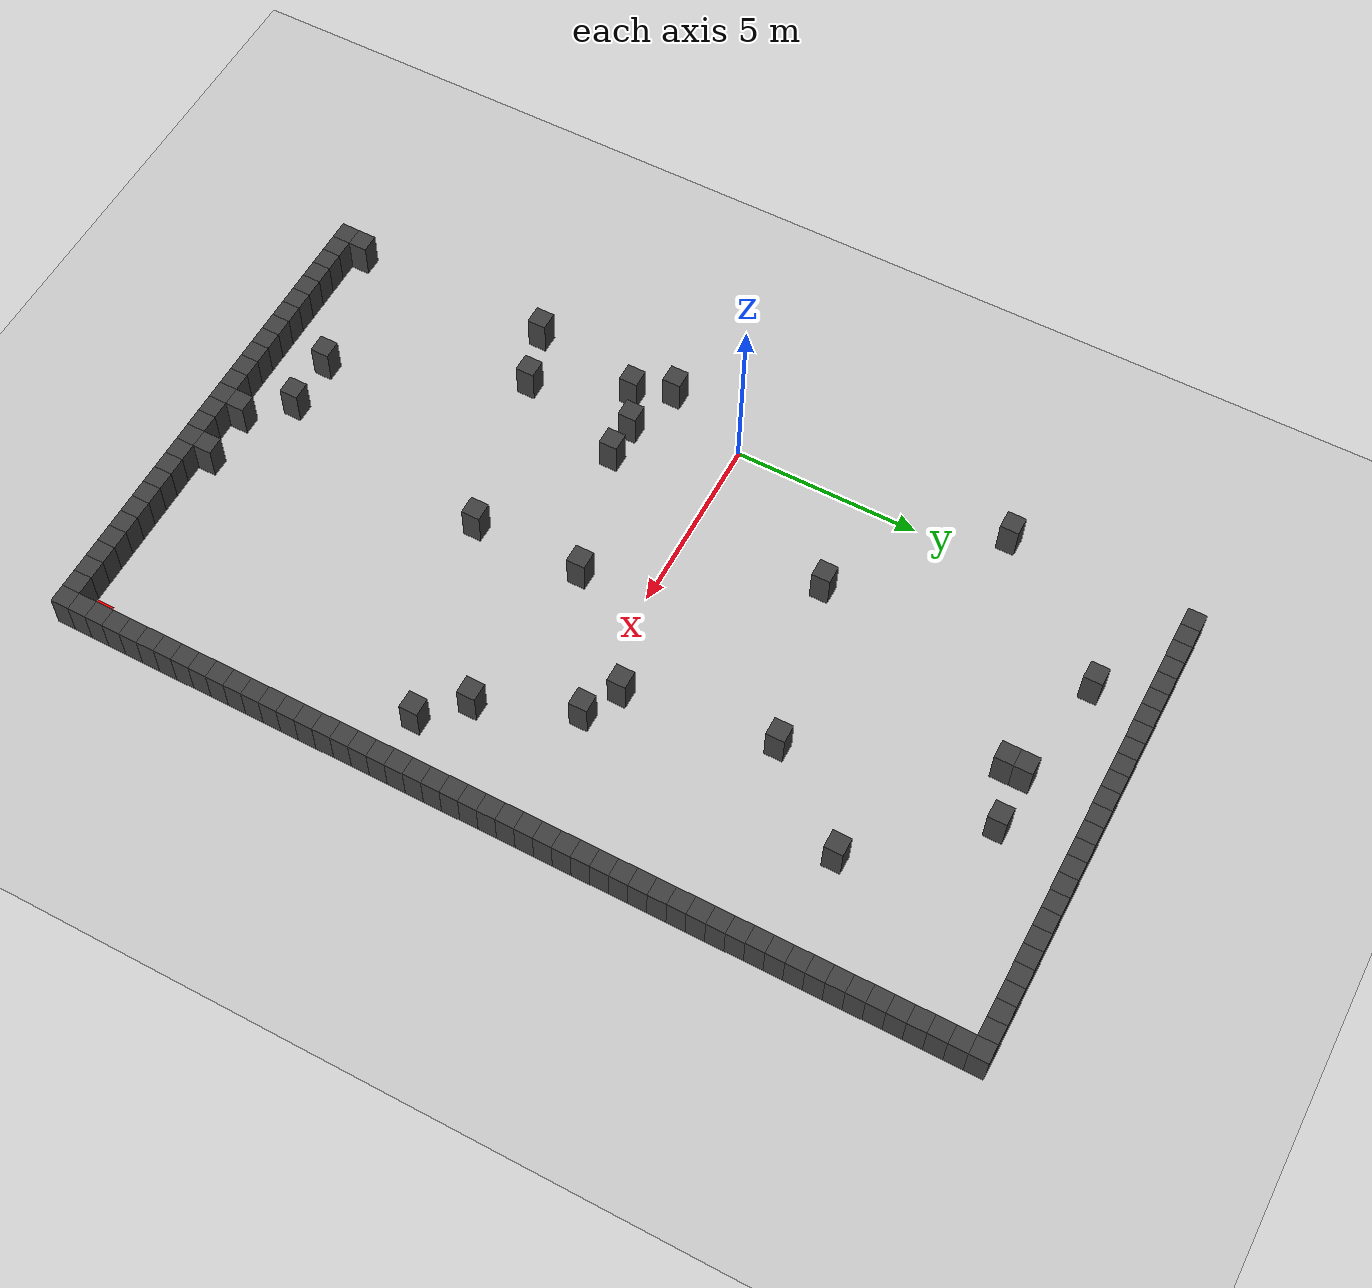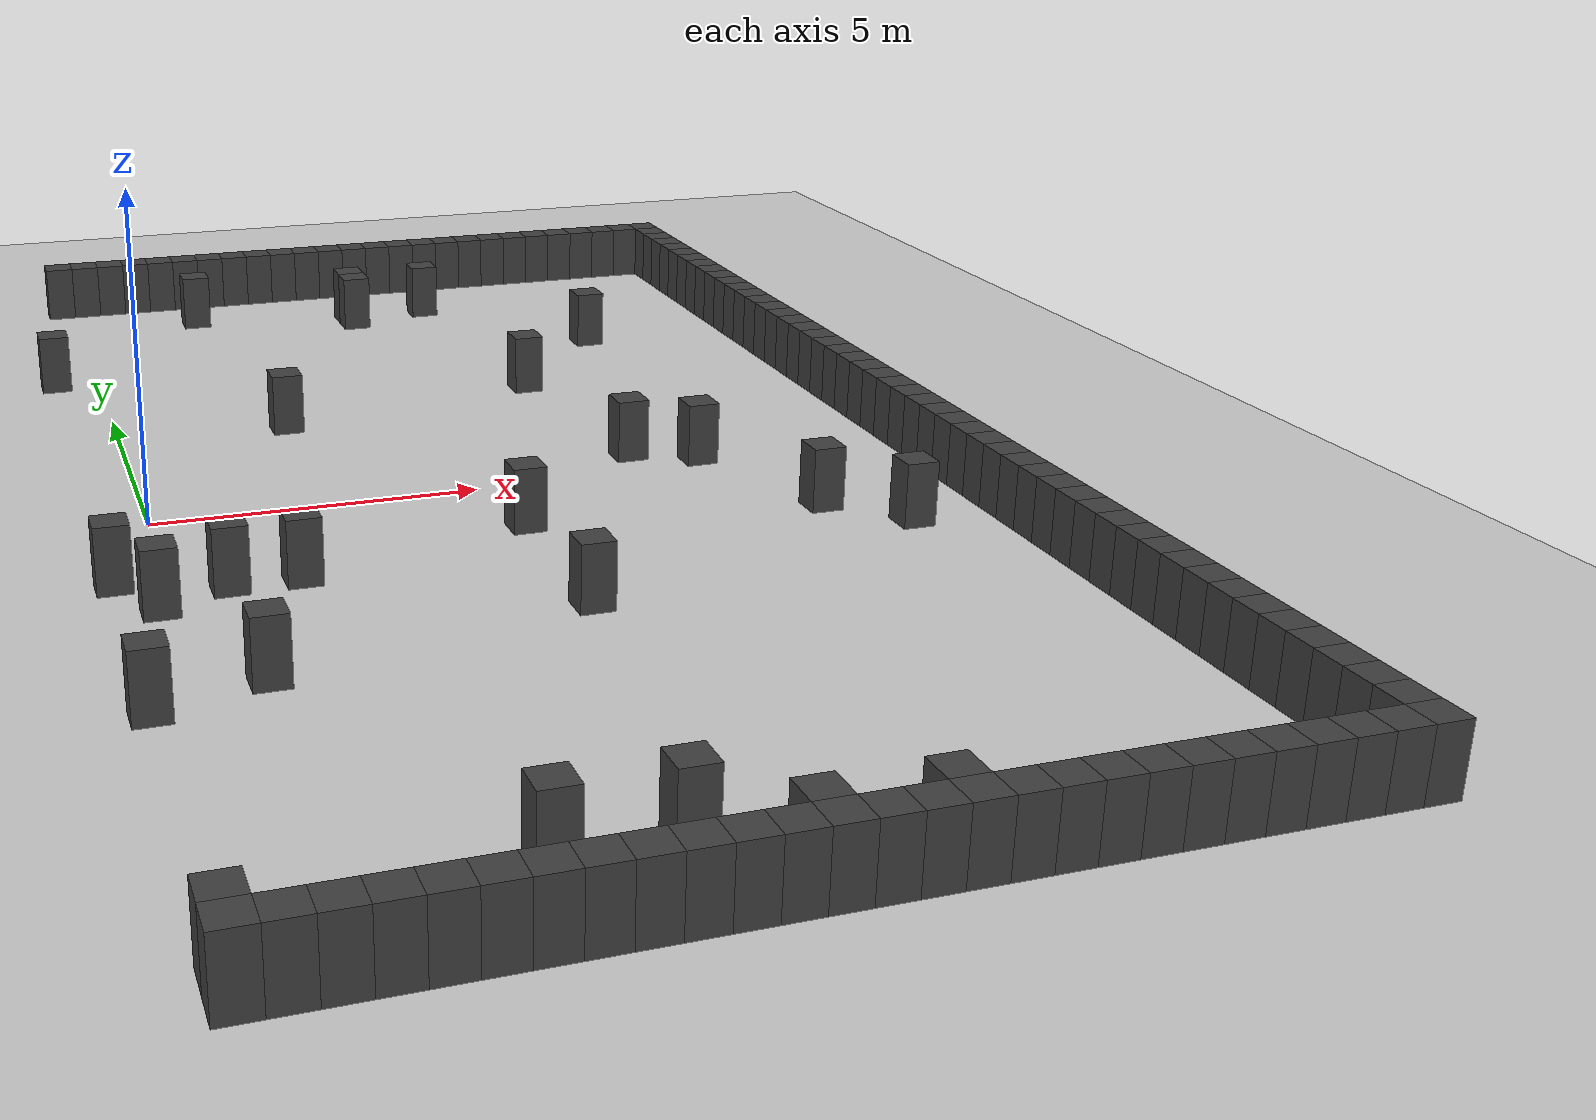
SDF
<sdf version="1.7">
 <world name="map_61">
  <model name="ground_plane">
   <static>true</static>
   <link name="link">
    <collision name="collision">
     <geometry><plane><normal>0 0 1</normal><size>200 200</size></plane></geometry>
    </collision>
    <visual name="visual">
     <geometry><plane><normal>0 0 1</normal><size>200 200</size></plane></geometry>
     <material><ambient>0.8 0.8 0.8 1</ambient><diffuse>0.8 0.8 0.8 1</diffuse></material>
    </visual>
   </link>
  </model>
  <model name="maze_environment">
   <static>true</static>
   <link name="wall_24">
    <pose>-0.250 12.250 0.500 0 0 0</pose>
    <collision name="col"><geometry><box><size>0.5 0.5 1.0</size></box></geometry></collision>
    <visual name="vis">
     <geometry><box><size>0.5 0.5 1.0</size></box></geometry>
     <material><ambient>0.15 0.15 0.15 1</ambient><diffuse>0.25 0.25 0.25 1</diffuse></material>
    </visual>
   </link>
   <link name="wall_25">
    <pose>0.250 12.250 0.500 0 0 0</pose>
    <collision name="col"><geometry><box><size>0.5 0.5 1.0</size></box></geometry></collision>
    <visual name="vis">
     <geometry><box><size>0.5 0.5 1.0</size></box></geometry>
     <material><ambient>0.15 0.15 0.15 1</ambient><diffuse>0.25 0.25 0.25 1</diffuse></material>
    </visual>
   </link>
   <link name="wall_26">
    <pose>0.750 12.250 0.500 0 0 0</pose>
    <collision name="col"><geometry><box><size>0.5 0.5 1.0</size></box></geometry></collision>
    <visual name="vis">
     <geometry><box><size>0.5 0.5 1.0</size></box></geometry>
     <material><ambient>0.15 0.15 0.15 1</ambient><diffuse>0.25 0.25 0.25 1</diffuse></material>
    </visual>
   </link>
   <link name="wall_27">
    <pose>1.250 12.250 0.500 0 0 0</pose>
    <collision name="col"><geometry><box><size>0.5 0.5 1.0</size></box></geometry></collision>
    <visual name="vis">
     <geometry><box><size>0.5 0.5 1.0</size></box></geometry>
     <material><ambient>0.15 0.15 0.15 1</ambient><diffuse>0.25 0.25 0.25 1</diffuse></material>
    </visual>
   </link>
   <link name="wall_28">
    <pose>1.750 12.250 0.500 0 0 0</pose>
    <collision name="col"><geometry><box><size>0.5 0.5 1.0</size></box></geometry></collision>
    <visual name="vis">
     <geometry><box><size>0.5 0.5 1.0</size></box></geometry>
     <material><ambient>0.15 0.15 0.15 1</ambient><diffuse>0.25 0.25 0.25 1</diffuse></material>
    </visual>
   </link>
   <link name="wall_29">
    <pose>2.250 12.250 0.500 0 0 0</pose>
    <collision name="col"><geometry><box><size>0.5 0.5 1.0</size></box></geometry></collision>
    <visual name="vis">
     <geometry><box><size>0.5 0.5 1.0</size></box></geometry>
     <material><ambient>0.15 0.15 0.15 1</ambient><diffuse>0.25 0.25 0.25 1</diffuse></material>
    </visual>
   </link>
   <link name="wall_30">
    <pose>2.750 12.250 0.500 0 0 0</pose>
    <collision name="col"><geometry><box><size>0.5 0.5 1.0</size></box></geometry></collision>
    <visual name="vis">
     <geometry><box><size>0.5 0.5 1.0</size></box></geometry>
     <material><ambient>0.15 0.15 0.15 1</ambient><diffuse>0.25 0.25 0.25 1</diffuse></material>
    </visual>
   </link>
   <link name="wall_31">
    <pose>3.250 12.250 0.500 0 0 0</pose>
    <collision name="col"><geometry><box><size>0.5 0.5 1.0</size></box></geometry></collision>
    <visual name="vis">
     <geometry><box><size>0.5 0.5 1.0</size></box></geometry>
     <material><ambient>0.15 0.15 0.15 1</ambient><diffuse>0.25 0.25 0.25 1</diffuse></material>
    </visual>
   </link>
   <link name="wall_32">
    <pose>3.750 12.250 0.500 0 0 0</pose>
    <collision name="col"><geometry><box><size>0.5 0.5 1.0</size></box></geometry></collision>
    <visual name="vis">
     <geometry><box><size>0.5 0.5 1.0</size></box></geometry>
     <material><ambient>0.15 0.15 0.15 1</ambient><diffuse>0.25 0.25 0.25 1</diffuse></material>
    </visual>
   </link>
   <link name="wall_33">
    <pose>4.250 12.250 0.500 0 0 0</pose>
    <collision name="col"><geometry><box><size>0.5 0.5 1.0</size></box></geometry></collision>
    <visual name="vis">
     <geometry><box><size>0.5 0.5 1.0</size></box></geometry>
     <material><ambient>0.15 0.15 0.15 1</ambient><diffuse>0.25 0.25 0.25 1</diffuse></material>
    </visual>
   </link>
   <link name="wall_34">
    <pose>4.750 12.250 0.500 0 0 0</pose>
    <collision name="col"><geometry><box><size>0.5 0.5 1.0</size></box></geometry></collision>
    <visual name="vis">
     <geometry><box><size>0.5 0.5 1.0</size></box></geometry>
     <material><ambient>0.15 0.15 0.15 1</ambient><diffuse>0.25 0.25 0.25 1</diffuse></material>
    </visual>
   </link>
   <link name="wall_35">
    <pose>5.250 12.250 0.500 0 0 0</pose>
    <collision name="col"><geometry><box><size>0.5 0.5 1.0</size></box></geometry></collision>
    <visual name="vis">
     <geometry><box><size>0.5 0.5 1.0</size></box></geometry>
     <material><ambient>0.15 0.15 0.15 1</ambient><diffuse>0.25 0.25 0.25 1</diffuse></material>
    </visual>
   </link>
   <link name="wall_36">
    <pose>5.750 12.250 0.500 0 0 0</pose>
    <collision name="col"><geometry><box><size>0.5 0.5 1.0</size></box></geometry></collision>
    <visual name="vis">
     <geometry><box><size>0.5 0.5 1.0</size></box></geometry>
     <material><ambient>0.15 0.15 0.15 1</ambient><diffuse>0.25 0.25 0.25 1</diffuse></material>
    </visual>
   </link>
   <link name="wall_37">
    <pose>6.250 12.250 0.500 0 0 0</pose>
    <collision name="col"><geometry><box><size>0.5 0.5 1.0</size></box></geometry></collision>
    <visual name="vis">
     <geometry><box><size>0.5 0.5 1.0</size></box></geometry>
     <material><ambient>0.15 0.15 0.15 1</ambient><diffuse>0.25 0.25 0.25 1</diffuse></material>
    </visual>
   </link>
   <link name="wall_38">
    <pose>6.750 12.250 0.500 0 0 0</pose>
    <collision name="col"><geometry><box><size>0.5 0.5 1.0</size></box></geometry></collision>
    <visual name="vis">
     <geometry><box><size>0.5 0.5 1.0</size></box></geometry>
     <material><ambient>0.15 0.15 0.15 1</ambient><diffuse>0.25 0.25 0.25 1</diffuse></material>
    </visual>
   </link>
   <link name="wall_39">
    <pose>7.250 12.250 0.500 0 0 0</pose>
    <collision name="col"><geometry><box><size>0.5 0.5 1.0</size></box></geometry></collision>
    <visual name="vis">
     <geometry><box><size>0.5 0.5 1.0</size></box></geometry>
     <material><ambient>0.15 0.15 0.15 1</ambient><diffuse>0.25 0.25 0.25 1</diffuse></material>
    </visual>
   </link>
   <link name="wall_40">
    <pose>7.750 12.250 0.500 0 0 0</pose>
    <collision name="col"><geometry><box><size>0.5 0.5 1.0</size></box></geometry></collision>
    <visual name="vis">
     <geometry><box><size>0.5 0.5 1.0</size></box></geometry>
     <material><ambient>0.15 0.15 0.15 1</ambient><diffuse>0.25 0.25 0.25 1</diffuse></material>
    </visual>
   </link>
   <link name="wall_41">
    <pose>8.250 12.250 0.500 0 0 0</pose>
    <collision name="col"><geometry><box><size>0.5 0.5 1.0</size></box></geometry></collision>
    <visual name="vis">
     <geometry><box><size>0.5 0.5 1.0</size></box></geometry>
     <material><ambient>0.15 0.15 0.15 1</ambient><diffuse>0.25 0.25 0.25 1</diffuse></material>
    </visual>
   </link>
   <link name="wall_42">
    <pose>8.750 12.250 0.500 0 0 0</pose>
    <collision name="col"><geometry><box><size>0.5 0.5 1.0</size></box></geometry></collision>
    <visual name="vis">
     <geometry><box><size>0.5 0.5 1.0</size></box></geometry>
     <material><ambient>0.15 0.15 0.15 1</ambient><diffuse>0.25 0.25 0.25 1</diffuse></material>
    </visual>
   </link>
   <link name="wall_43">
    <pose>9.250 12.250 0.500 0 0 0</pose>
    <collision name="col"><geometry><box><size>0.5 0.5 1.0</size></box></geometry></collision>
    <visual name="vis">
     <geometry><box><size>0.5 0.5 1.0</size></box></geometry>
     <material><ambient>0.15 0.15 0.15 1</ambient><diffuse>0.25 0.25 0.25 1</diffuse></material>
    </visual>
   </link>
   <link name="wall_44">
    <pose>9.750 12.250 0.500 0 0 0</pose>
    <collision name="col"><geometry><box><size>0.5 0.5 1.0</size></box></geometry></collision>
    <visual name="vis">
     <geometry><box><size>0.5 0.5 1.0</size></box></geometry>
     <material><ambient>0.15 0.15 0.15 1</ambient><diffuse>0.25 0.25 0.25 1</diffuse></material>
    </visual>
   </link>
   <link name="wall_45">
    <pose>10.250 12.250 0.500 0 0 0</pose>
    <collision name="col"><geometry><box><size>0.5 0.5 1.0</size></box></geometry></collision>
    <visual name="vis">
     <geometry><box><size>0.5 0.5 1.0</size></box></geometry>
     <material><ambient>0.15 0.15 0.15 1</ambient><diffuse>0.25 0.25 0.25 1</diffuse></material>
    </visual>
   </link>
   <link name="wall_46">
    <pose>10.750 12.250 0.500 0 0 0</pose>
    <collision name="col"><geometry><box><size>0.5 0.5 1.0</size></box></geometry></collision>
    <visual name="vis">
     <geometry><box><size>0.5 0.5 1.0</size></box></geometry>
     <material><ambient>0.15 0.15 0.15 1</ambient><diffuse>0.25 0.25 0.25 1</diffuse></material>
    </visual>
   </link>
   <link name="wall_47">
    <pose>11.250 12.250 0.500 0 0 0</pose>
    <collision name="col"><geometry><box><size>0.5 0.5 1.0</size></box></geometry></collision>
    <visual name="vis">
     <geometry><box><size>0.5 0.5 1.0</size></box></geometry>
     <material><ambient>0.15 0.15 0.15 1</ambient><diffuse>0.25 0.25 0.25 1</diffuse></material>
    </visual>
   </link>
   <link name="wall_48">
    <pose>11.750 12.250 0.500 0 0 0</pose>
    <collision name="col"><geometry><box><size>0.5 0.5 1.0</size></box></geometry></collision>
    <visual name="vis">
     <geometry><box><size>0.5 0.5 1.0</size></box></geometry>
     <material><ambient>0.15 0.15 0.15 1</ambient><diffuse>0.25 0.25 0.25 1</diffuse></material>
    </visual>
   </link>
   <link name="wall_49">
    <pose>12.250 12.250 0.500 0 0 0</pose>
    <collision name="col"><geometry><box><size>0.5 0.5 1.0</size></box></geometry></collision>
    <visual name="vis">
     <geometry><box><size>0.5 0.5 1.0</size></box></geometry>
     <material><ambient>0.15 0.15 0.15 1</ambient><diffuse>0.25 0.25 0.25 1</diffuse></material>
    </visual>
   </link>
   <link name="wall_52">
    <pose>12.250 11.750 0.500 0 0 0</pose>
    <collision name="col"><geometry><box><size>0.5 0.5 1.0</size></box></geometry></collision>
    <visual name="vis">
     <geometry><box><size>0.5 0.5 1.0</size></box></geometry>
     <material><ambient>0.15 0.15 0.15 1</ambient><diffuse>0.25 0.25 0.25 1</diffuse></material>
    </visual>
   </link>
   <link name="wall_57">
    <pose>12.250 11.250 0.500 0 0 0</pose>
    <collision name="col"><geometry><box><size>0.5 0.5 1.0</size></box></geometry></collision>
    <visual name="vis">
     <geometry><box><size>0.5 0.5 1.0</size></box></geometry>
     <material><ambient>0.15 0.15 0.15 1</ambient><diffuse>0.25 0.25 0.25 1</diffuse></material>
    </visual>
   </link>
   <link name="wall_59">
    <pose>2.250 10.750 0.500 0 0 0</pose>
    <collision name="col"><geometry><box><size>0.5 0.5 1.0</size></box></geometry></collision>
    <visual name="vis">
     <geometry><box><size>0.5 0.5 1.0</size></box></geometry>
     <material><ambient>0.15 0.15 0.15 1</ambient><diffuse>0.25 0.25 0.25 1</diffuse></material>
    </visual>
   </link>
   <link name="wall_60">
    <pose>12.250 10.750 0.500 0 0 0</pose>
    <collision name="col"><geometry><box><size>0.5 0.5 1.0</size></box></geometry></collision>
    <visual name="vis">
     <geometry><box><size>0.5 0.5 1.0</size></box></geometry>
     <material><ambient>0.15 0.15 0.15 1</ambient><diffuse>0.25 0.25 0.25 1</diffuse></material>
    </visual>
   </link>
   <link name="wall_62">
    <pose>5.250 10.250 0.500 0 0 0</pose>
    <collision name="col"><geometry><box><size>0.5 0.5 1.0</size></box></geometry></collision>
    <visual name="vis">
     <geometry><box><size>0.5 0.5 1.0</size></box></geometry>
     <material><ambient>0.15 0.15 0.15 1</ambient><diffuse>0.25 0.25 0.25 1</diffuse></material>
    </visual>
   </link>
   <link name="wall_63">
    <pose>6.750 10.250 0.500 0 0 0</pose>
    <collision name="col"><geometry><box><size>0.5 0.5 1.0</size></box></geometry></collision>
    <visual name="vis">
     <geometry><box><size>0.5 0.5 1.0</size></box></geometry>
     <material><ambient>0.15 0.15 0.15 1</ambient><diffuse>0.25 0.25 0.25 1</diffuse></material>
    </visual>
   </link>
   <link name="wall_64">
    <pose>12.250 10.250 0.500 0 0 0</pose>
    <collision name="col"><geometry><box><size>0.5 0.5 1.0</size></box></geometry></collision>
    <visual name="vis">
     <geometry><box><size>0.5 0.5 1.0</size></box></geometry>
     <material><ambient>0.15 0.15 0.15 1</ambient><diffuse>0.25 0.25 0.25 1</diffuse></material>
    </visual>
   </link>
   <link name="wall_66">
    <pose>5.250 9.750 0.500 0 0 0</pose>
    <collision name="col"><geometry><box><size>0.5 0.5 1.0</size></box></geometry></collision>
    <visual name="vis">
     <geometry><box><size>0.5 0.5 1.0</size></box></geometry>
     <material><ambient>0.15 0.15 0.15 1</ambient><diffuse>0.25 0.25 0.25 1</diffuse></material>
    </visual>
   </link>
   <link name="wall_67">
    <pose>12.250 9.750 0.500 0 0 0</pose>
    <collision name="col"><geometry><box><size>0.5 0.5 1.0</size></box></geometry></collision>
    <visual name="vis">
     <geometry><box><size>0.5 0.5 1.0</size></box></geometry>
     <material><ambient>0.15 0.15 0.15 1</ambient><diffuse>0.25 0.25 0.25 1</diffuse></material>
    </visual>
   </link>
   <link name="wall_70">
    <pose>12.250 9.250 0.500 0 0 0</pose>
    <collision name="col"><geometry><box><size>0.5 0.5 1.0</size></box></geometry></collision>
    <visual name="vis">
     <geometry><box><size>0.5 0.5 1.0</size></box></geometry>
     <material><ambient>0.15 0.15 0.15 1</ambient><diffuse>0.25 0.25 0.25 1</diffuse></material>
    </visual>
   </link>
   <link name="wall_72">
    <pose>12.250 8.750 0.500 0 0 0</pose>
    <collision name="col"><geometry><box><size>0.5 0.5 1.0</size></box></geometry></collision>
    <visual name="vis">
     <geometry><box><size>0.5 0.5 1.0</size></box></geometry>
     <material><ambient>0.15 0.15 0.15 1</ambient><diffuse>0.25 0.25 0.25 1</diffuse></material>
    </visual>
   </link>
   <link name="wall_75">
    <pose>12.250 8.250 0.500 0 0 0</pose>
    <collision name="col"><geometry><box><size>0.5 0.5 1.0</size></box></geometry></collision>
    <visual name="vis">
     <geometry><box><size>0.5 0.5 1.0</size></box></geometry>
     <material><ambient>0.15 0.15 0.15 1</ambient><diffuse>0.25 0.25 0.25 1</diffuse></material>
    </visual>
   </link>
   <link name="wall_77">
    <pose>12.250 7.750 0.500 0 0 0</pose>
    <collision name="col"><geometry><box><size>0.5 0.5 1.0</size></box></geometry></collision>
    <visual name="vis">
     <geometry><box><size>0.5 0.5 1.0</size></box></geometry>
     <material><ambient>0.15 0.15 0.15 1</ambient><diffuse>0.25 0.25 0.25 1</diffuse></material>
    </visual>
   </link>
   <link name="wall_80">
    <pose>-0.750 7.250 0.500 0 0 0</pose>
    <collision name="col"><geometry><box><size>0.5 0.5 1.0</size></box></geometry></collision>
    <visual name="vis">
     <geometry><box><size>0.5 0.5 1.0</size></box></geometry>
     <material><ambient>0.15 0.15 0.15 1</ambient><diffuse>0.25 0.25 0.25 1</diffuse></material>
    </visual>
   </link>
   <link name="wall_81">
    <pose>9.250 7.250 0.500 0 0 0</pose>
    <collision name="col"><geometry><box><size>0.5 0.5 1.0</size></box></geometry></collision>
    <visual name="vis">
     <geometry><box><size>0.5 0.5 1.0</size></box></geometry>
     <material><ambient>0.15 0.15 0.15 1</ambient><diffuse>0.25 0.25 0.25 1</diffuse></material>
    </visual>
   </link>
   <link name="wall_82">
    <pose>12.250 7.250 0.500 0 0 0</pose>
    <collision name="col"><geometry><box><size>0.5 0.5 1.0</size></box></geometry></collision>
    <visual name="vis">
     <geometry><box><size>0.5 0.5 1.0</size></box></geometry>
     <material><ambient>0.15 0.15 0.15 1</ambient><diffuse>0.25 0.25 0.25 1</diffuse></material>
    </visual>
   </link>
   <link name="wall_84">
    <pose>12.250 6.750 0.500 0 0 0</pose>
    <collision name="col"><geometry><box><size>0.5 0.5 1.0</size></box></geometry></collision>
    <visual name="vis">
     <geometry><box><size>0.5 0.5 1.0</size></box></geometry>
     <material><ambient>0.15 0.15 0.15 1</ambient><diffuse>0.25 0.25 0.25 1</diffuse></material>
    </visual>
   </link>
   <link name="wall_87">
    <pose>12.250 6.250 0.500 0 0 0</pose>
    <collision name="col"><geometry><box><size>0.5 0.5 1.0</size></box></geometry></collision>
    <visual name="vis">
     <geometry><box><size>0.5 0.5 1.0</size></box></geometry>
     <material><ambient>0.15 0.15 0.15 1</ambient><diffuse>0.25 0.25 0.25 1</diffuse></material>
    </visual>
   </link>
   <link name="wall_90">
    <pose>12.250 5.750 0.500 0 0 0</pose>
    <collision name="col"><geometry><box><size>0.5 0.5 1.0</size></box></geometry></collision>
    <visual name="vis">
     <geometry><box><size>0.5 0.5 1.0</size></box></geometry>
     <material><ambient>0.15 0.15 0.15 1</ambient><diffuse>0.25 0.25 0.25 1</diffuse></material>
    </visual>
   </link>
   <link name="wall_92">
    <pose>12.250 5.250 0.500 0 0 0</pose>
    <collision name="col"><geometry><box><size>0.5 0.5 1.0</size></box></geometry></collision>
    <visual name="vis">
     <geometry><box><size>0.5 0.5 1.0</size></box></geometry>
     <material><ambient>0.15 0.15 0.15 1</ambient><diffuse>0.25 0.25 0.25 1</diffuse></material>
    </visual>
   </link>
   <link name="wall_94">
    <pose>7.250 4.750 0.500 0 0 0</pose>
    <collision name="col"><geometry><box><size>0.5 0.5 1.0</size></box></geometry></collision>
    <visual name="vis">
     <geometry><box><size>0.5 0.5 1.0</size></box></geometry>
     <material><ambient>0.15 0.15 0.15 1</ambient><diffuse>0.25 0.25 0.25 1</diffuse></material>
    </visual>
   </link>
   <link name="wall_95">
    <pose>12.250 4.750 0.500 0 0 0</pose>
    <collision name="col"><geometry><box><size>0.5 0.5 1.0</size></box></geometry></collision>
    <visual name="vis">
     <geometry><box><size>0.5 0.5 1.0</size></box></geometry>
     <material><ambient>0.15 0.15 0.15 1</ambient><diffuse>0.25 0.25 0.25 1</diffuse></material>
    </visual>
   </link>
   <link name="wall_97">
    <pose>12.250 4.250 0.500 0 0 0</pose>
    <collision name="col"><geometry><box><size>0.5 0.5 1.0</size></box></geometry></collision>
    <visual name="vis">
     <geometry><box><size>0.5 0.5 1.0</size></box></geometry>
     <material><ambient>0.15 0.15 0.15 1</ambient><diffuse>0.25 0.25 0.25 1</diffuse></material>
    </visual>
   </link>
   <link name="wall_99">
    <pose>2.750 3.750 0.500 0 0 0</pose>
    <collision name="col"><geometry><box><size>0.5 0.5 1.0</size></box></geometry></collision>
    <visual name="vis">
     <geometry><box><size>0.5 0.5 1.0</size></box></geometry>
     <material><ambient>0.15 0.15 0.15 1</ambient><diffuse>0.25 0.25 0.25 1</diffuse></material>
    </visual>
   </link>
   <link name="wall_100">
    <pose>12.250 3.750 0.500 0 0 0</pose>
    <collision name="col"><geometry><box><size>0.5 0.5 1.0</size></box></geometry></collision>
    <visual name="vis">
     <geometry><box><size>0.5 0.5 1.0</size></box></geometry>
     <material><ambient>0.15 0.15 0.15 1</ambient><diffuse>0.25 0.25 0.25 1</diffuse></material>
    </visual>
   </link>
   <link name="wall_104">
    <pose>12.250 3.250 0.500 0 0 0</pose>
    <collision name="col"><geometry><box><size>0.5 0.5 1.0</size></box></geometry></collision>
    <visual name="vis">
     <geometry><box><size>0.5 0.5 1.0</size></box></geometry>
     <material><ambient>0.15 0.15 0.15 1</ambient><diffuse>0.25 0.25 0.25 1</diffuse></material>
    </visual>
   </link>
   <link name="wall_106">
    <pose>12.250 2.750 0.500 0 0 0</pose>
    <collision name="col"><geometry><box><size>0.5 0.5 1.0</size></box></geometry></collision>
    <visual name="vis">
     <geometry><box><size>0.5 0.5 1.0</size></box></geometry>
     <material><ambient>0.15 0.15 0.15 1</ambient><diffuse>0.25 0.25 0.25 1</diffuse></material>
    </visual>
   </link>
   <link name="wall_110">
    <pose>12.250 2.250 0.500 0 0 0</pose>
    <collision name="col"><geometry><box><size>0.5 0.5 1.0</size></box></geometry></collision>
    <visual name="vis">
     <geometry><box><size>0.5 0.5 1.0</size></box></geometry>
     <material><ambient>0.15 0.15 0.15 1</ambient><diffuse>0.25 0.25 0.25 1</diffuse></material>
    </visual>
   </link>
   <link name="wall_112">
    <pose>12.250 1.750 0.500 0 0 0</pose>
    <collision name="col"><geometry><box><size>0.5 0.5 1.0</size></box></geometry></collision>
    <visual name="vis">
     <geometry><box><size>0.5 0.5 1.0</size></box></geometry>
     <material><ambient>0.15 0.15 0.15 1</ambient><diffuse>0.25 0.25 0.25 1</diffuse></material>
    </visual>
   </link>
   <link name="wall_114">
    <pose>12.250 1.250 0.500 0 0 0</pose>
    <collision name="col"><geometry><box><size>0.5 0.5 1.0</size></box></geometry></collision>
    <visual name="vis">
     <geometry><box><size>0.5 0.5 1.0</size></box></geometry>
     <material><ambient>0.15 0.15 0.15 1</ambient><diffuse>0.25 0.25 0.25 1</diffuse></material>
    </visual>
   </link>
   <link name="wall_116">
    <pose>7.750 0.750 0.500 0 0 0</pose>
    <collision name="col"><geometry><box><size>0.5 0.5 1.0</size></box></geometry></collision>
    <visual name="vis">
     <geometry><box><size>0.5 0.5 1.0</size></box></geometry>
     <material><ambient>0.15 0.15 0.15 1</ambient><diffuse>0.25 0.25 0.25 1</diffuse></material>
    </visual>
   </link>
   <link name="wall_117">
    <pose>12.250 0.750 0.500 0 0 0</pose>
    <collision name="col"><geometry><box><size>0.5 0.5 1.0</size></box></geometry></collision>
    <visual name="vis">
     <geometry><box><size>0.5 0.5 1.0</size></box></geometry>
     <material><ambient>0.15 0.15 0.15 1</ambient><diffuse>0.25 0.25 0.25 1</diffuse></material>
    </visual>
   </link>
   <link name="wall_122">
    <pose>8.750 0.250 0.500 0 0 0</pose>
    <collision name="col"><geometry><box><size>0.5 0.5 1.0</size></box></geometry></collision>
    <visual name="vis">
     <geometry><box><size>0.5 0.5 1.0</size></box></geometry>
     <material><ambient>0.15 0.15 0.15 1</ambient><diffuse>0.25 0.25 0.25 1</diffuse></material>
    </visual>
   </link>
   <link name="wall_123">
    <pose>12.250 0.250 0.500 0 0 0</pose>
    <collision name="col"><geometry><box><size>0.5 0.5 1.0</size></box></geometry></collision>
    <visual name="vis">
     <geometry><box><size>0.5 0.5 1.0</size></box></geometry>
     <material><ambient>0.15 0.15 0.15 1</ambient><diffuse>0.25 0.25 0.25 1</diffuse></material>
    </visual>
   </link>
   <link name="wall_126">
    <pose>12.250 -0.250 0.500 0 0 0</pose>
    <collision name="col"><geometry><box><size>0.5 0.5 1.0</size></box></geometry></collision>
    <visual name="vis">
     <geometry><box><size>0.5 0.5 1.0</size></box></geometry>
     <material><ambient>0.15 0.15 0.15 1</ambient><diffuse>0.25 0.25 0.25 1</diffuse></material>
    </visual>
   </link>
   <link name="wall_128">
    <pose>12.250 -0.750 0.500 0 0 0</pose>
    <collision name="col"><geometry><box><size>0.5 0.5 1.0</size></box></geometry></collision>
    <visual name="vis">
     <geometry><box><size>0.5 0.5 1.0</size></box></geometry>
     <material><ambient>0.15 0.15 0.15 1</ambient><diffuse>0.25 0.25 0.25 1</diffuse></material>
    </visual>
   </link>
   <link name="wall_132">
    <pose>12.250 -1.250 0.500 0 0 0</pose>
    <collision name="col"><geometry><box><size>0.5 0.5 1.0</size></box></geometry></collision>
    <visual name="vis">
     <geometry><box><size>0.5 0.5 1.0</size></box></geometry>
     <material><ambient>0.15 0.15 0.15 1</ambient><diffuse>0.25 0.25 0.25 1</diffuse></material>
    </visual>
   </link>
   <link name="wall_134">
    <pose>5.250 -1.750 0.500 0 0 0</pose>
    <collision name="col"><geometry><box><size>0.5 0.5 1.0</size></box></geometry></collision>
    <visual name="vis">
     <geometry><box><size>0.5 0.5 1.0</size></box></geometry>
     <material><ambient>0.15 0.15 0.15 1</ambient><diffuse>0.25 0.25 0.25 1</diffuse></material>
    </visual>
   </link>
   <link name="wall_135">
    <pose>12.250 -1.750 0.500 0 0 0</pose>
    <collision name="col"><geometry><box><size>0.5 0.5 1.0</size></box></geometry></collision>
    <visual name="vis">
     <geometry><box><size>0.5 0.5 1.0</size></box></geometry>
     <material><ambient>0.15 0.15 0.15 1</ambient><diffuse>0.25 0.25 0.25 1</diffuse></material>
    </visual>
   </link>
   <link name="wall_138">
    <pose>-0.750 -2.250 0.500 0 0 0</pose>
    <collision name="col"><geometry><box><size>0.5 0.5 1.0</size></box></geometry></collision>
    <visual name="vis">
     <geometry><box><size>0.5 0.5 1.0</size></box></geometry>
     <material><ambient>0.15 0.15 0.15 1</ambient><diffuse>0.25 0.25 0.25 1</diffuse></material>
    </visual>
   </link>
   <link name="wall_139">
    <pose>9.750 -2.250 0.500 0 0 0</pose>
    <collision name="col"><geometry><box><size>0.5 0.5 1.0</size></box></geometry></collision>
    <visual name="vis">
     <geometry><box><size>0.5 0.5 1.0</size></box></geometry>
     <material><ambient>0.15 0.15 0.15 1</ambient><diffuse>0.25 0.25 0.25 1</diffuse></material>
    </visual>
   </link>
   <link name="wall_140">
    <pose>12.250 -2.250 0.500 0 0 0</pose>
    <collision name="col"><geometry><box><size>0.5 0.5 1.0</size></box></geometry></collision>
    <visual name="vis">
     <geometry><box><size>0.5 0.5 1.0</size></box></geometry>
     <material><ambient>0.15 0.15 0.15 1</ambient><diffuse>0.25 0.25 0.25 1</diffuse></material>
    </visual>
   </link>
   <link name="wall_142">
    <pose>0.750 -2.750 0.500 0 0 0</pose>
    <collision name="col"><geometry><box><size>0.5 0.5 1.0</size></box></geometry></collision>
    <visual name="vis">
     <geometry><box><size>0.5 0.5 1.0</size></box></geometry>
     <material><ambient>0.15 0.15 0.15 1</ambient><diffuse>0.25 0.25 0.25 1</diffuse></material>
    </visual>
   </link>
   <link name="wall_143">
    <pose>1.750 -2.750 0.500 0 0 0</pose>
    <collision name="col"><geometry><box><size>0.5 0.5 1.0</size></box></geometry></collision>
    <visual name="vis">
     <geometry><box><size>0.5 0.5 1.0</size></box></geometry>
     <material><ambient>0.15 0.15 0.15 1</ambient><diffuse>0.25 0.25 0.25 1</diffuse></material>
    </visual>
   </link>
   <link name="wall_144">
    <pose>12.250 -2.750 0.500 0 0 0</pose>
    <collision name="col"><geometry><box><size>0.5 0.5 1.0</size></box></geometry></collision>
    <visual name="vis">
     <geometry><box><size>0.5 0.5 1.0</size></box></geometry>
     <material><ambient>0.15 0.15 0.15 1</ambient><diffuse>0.25 0.25 0.25 1</diffuse></material>
    </visual>
   </link>
   <link name="wall_148">
    <pose>-0.250 -3.250 0.500 0 0 0</pose>
    <collision name="col"><geometry><box><size>0.5 0.5 1.0</size></box></geometry></collision>
    <visual name="vis">
     <geometry><box><size>0.5 0.5 1.0</size></box></geometry>
     <material><ambient>0.15 0.15 0.15 1</ambient><diffuse>0.25 0.25 0.25 1</diffuse></material>
    </visual>
   </link>
   <link name="wall_149">
    <pose>10.750 -3.250 0.500 0 0 0</pose>
    <collision name="col"><geometry><box><size>0.5 0.5 1.0</size></box></geometry></collision>
    <visual name="vis">
     <geometry><box><size>0.5 0.5 1.0</size></box></geometry>
     <material><ambient>0.15 0.15 0.15 1</ambient><diffuse>0.25 0.25 0.25 1</diffuse></material>
    </visual>
   </link>
   <link name="wall_150">
    <pose>12.250 -3.250 0.500 0 0 0</pose>
    <collision name="col"><geometry><box><size>0.5 0.5 1.0</size></box></geometry></collision>
    <visual name="vis">
     <geometry><box><size>0.5 0.5 1.0</size></box></geometry>
     <material><ambient>0.15 0.15 0.15 1</ambient><diffuse>0.25 0.25 0.25 1</diffuse></material>
    </visual>
   </link>
   <link name="wall_152">
    <pose>12.250 -3.750 0.500 0 0 0</pose>
    <collision name="col"><geometry><box><size>0.5 0.5 1.0</size></box></geometry></collision>
    <visual name="vis">
     <geometry><box><size>0.5 0.5 1.0</size></box></geometry>
     <material><ambient>0.15 0.15 0.15 1</ambient><diffuse>0.25 0.25 0.25 1</diffuse></material>
    </visual>
   </link>
   <link name="wall_154">
    <pose>12.250 -4.250 0.500 0 0 0</pose>
    <collision name="col"><geometry><box><size>0.5 0.5 1.0</size></box></geometry></collision>
    <visual name="vis">
     <geometry><box><size>0.5 0.5 1.0</size></box></geometry>
     <material><ambient>0.15 0.15 0.15 1</ambient><diffuse>0.25 0.25 0.25 1</diffuse></material>
    </visual>
   </link>
   <link name="wall_156">
    <pose>5.250 -4.750 0.500 0 0 0</pose>
    <collision name="col"><geometry><box><size>0.5 0.5 1.0</size></box></geometry></collision>
    <visual name="vis">
     <geometry><box><size>0.5 0.5 1.0</size></box></geometry>
     <material><ambient>0.15 0.15 0.15 1</ambient><diffuse>0.25 0.25 0.25 1</diffuse></material>
    </visual>
   </link>
   <link name="wall_157">
    <pose>12.250 -4.750 0.500 0 0 0</pose>
    <collision name="col"><geometry><box><size>0.5 0.5 1.0</size></box></geometry></collision>
    <visual name="vis">
     <geometry><box><size>0.5 0.5 1.0</size></box></geometry>
     <material><ambient>0.15 0.15 0.15 1</ambient><diffuse>0.25 0.25 0.25 1</diffuse></material>
    </visual>
   </link>
   <link name="wall_159">
    <pose>12.250 -5.250 0.500 0 0 0</pose>
    <collision name="col"><geometry><box><size>0.5 0.5 1.0</size></box></geometry></collision>
    <visual name="vis">
     <geometry><box><size>0.5 0.5 1.0</size></box></geometry>
     <material><ambient>0.15 0.15 0.15 1</ambient><diffuse>0.25 0.25 0.25 1</diffuse></material>
    </visual>
   </link>
   <link name="wall_161">
    <pose>0.750 -5.750 0.500 0 0 0</pose>
    <collision name="col"><geometry><box><size>0.5 0.5 1.0</size></box></geometry></collision>
    <visual name="vis">
     <geometry><box><size>0.5 0.5 1.0</size></box></geometry>
     <material><ambient>0.15 0.15 0.15 1</ambient><diffuse>0.25 0.25 0.25 1</diffuse></material>
    </visual>
   </link>
   <link name="wall_162">
    <pose>12.250 -5.750 0.500 0 0 0</pose>
    <collision name="col"><geometry><box><size>0.5 0.5 1.0</size></box></geometry></collision>
    <visual name="vis">
     <geometry><box><size>0.5 0.5 1.0</size></box></geometry>
     <material><ambient>0.15 0.15 0.15 1</ambient><diffuse>0.25 0.25 0.25 1</diffuse></material>
    </visual>
   </link>
   <link name="wall_164">
    <pose>-0.750 -6.250 0.500 0 0 0</pose>
    <collision name="col"><geometry><box><size>0.5 0.5 1.0</size></box></geometry></collision>
    <visual name="vis">
     <geometry><box><size>0.5 0.5 1.0</size></box></geometry>
     <material><ambient>0.15 0.15 0.15 1</ambient><diffuse>0.25 0.25 0.25 1</diffuse></material>
    </visual>
   </link>
   <link name="wall_165">
    <pose>12.250 -6.250 0.500 0 0 0</pose>
    <collision name="col"><geometry><box><size>0.5 0.5 1.0</size></box></geometry></collision>
    <visual name="vis">
     <geometry><box><size>0.5 0.5 1.0</size></box></geometry>
     <material><ambient>0.15 0.15 0.15 1</ambient><diffuse>0.25 0.25 0.25 1</diffuse></material>
    </visual>
   </link>
   <link name="wall_167">
    <pose>12.250 -6.750 0.500 0 0 0</pose>
    <collision name="col"><geometry><box><size>0.5 0.5 1.0</size></box></geometry></collision>
    <visual name="vis">
     <geometry><box><size>0.5 0.5 1.0</size></box></geometry>
     <material><ambient>0.15 0.15 0.15 1</ambient><diffuse>0.25 0.25 0.25 1</diffuse></material>
    </visual>
   </link>
   <link name="wall_171">
    <pose>12.250 -7.250 0.500 0 0 0</pose>
    <collision name="col"><geometry><box><size>0.5 0.5 1.0</size></box></geometry></collision>
    <visual name="vis">
     <geometry><box><size>0.5 0.5 1.0</size></box></geometry>
     <material><ambient>0.15 0.15 0.15 1</ambient><diffuse>0.25 0.25 0.25 1</diffuse></material>
    </visual>
   </link>
   <link name="wall_174">
    <pose>12.250 -7.750 0.500 0 0 0</pose>
    <collision name="col"><geometry><box><size>0.5 0.5 1.0</size></box></geometry></collision>
    <visual name="vis">
     <geometry><box><size>0.5 0.5 1.0</size></box></geometry>
     <material><ambient>0.15 0.15 0.15 1</ambient><diffuse>0.25 0.25 0.25 1</diffuse></material>
    </visual>
   </link>
   <link name="wall_178">
    <pose>12.250 -8.250 0.500 0 0 0</pose>
    <collision name="col"><geometry><box><size>0.5 0.5 1.0</size></box></geometry></collision>
    <visual name="vis">
     <geometry><box><size>0.5 0.5 1.0</size></box></geometry>
     <material><ambient>0.15 0.15 0.15 1</ambient><diffuse>0.25 0.25 0.25 1</diffuse></material>
    </visual>
   </link>
   <link name="wall_180">
    <pose>12.250 -8.750 0.500 0 0 0</pose>
    <collision name="col"><geometry><box><size>0.5 0.5 1.0</size></box></geometry></collision>
    <visual name="vis">
     <geometry><box><size>0.5 0.5 1.0</size></box></geometry>
     <material><ambient>0.15 0.15 0.15 1</ambient><diffuse>0.25 0.25 0.25 1</diffuse></material>
    </visual>
   </link>
   <link name="wall_182">
    <pose>12.250 -9.250 0.500 0 0 0</pose>
    <collision name="col"><geometry><box><size>0.5 0.5 1.0</size></box></geometry></collision>
    <visual name="vis">
     <geometry><box><size>0.5 0.5 1.0</size></box></geometry>
     <material><ambient>0.15 0.15 0.15 1</ambient><diffuse>0.25 0.25 0.25 1</diffuse></material>
    </visual>
   </link>
   <link name="wall_185">
    <pose>12.250 -9.750 0.500 0 0 0</pose>
    <collision name="col"><geometry><box><size>0.5 0.5 1.0</size></box></geometry></collision>
    <visual name="vis">
     <geometry><box><size>0.5 0.5 1.0</size></box></geometry>
     <material><ambient>0.15 0.15 0.15 1</ambient><diffuse>0.25 0.25 0.25 1</diffuse></material>
    </visual>
   </link>
   <link name="wall_188">
    <pose>12.250 -10.250 0.500 0 0 0</pose>
    <collision name="col"><geometry><box><size>0.5 0.5 1.0</size></box></geometry></collision>
    <visual name="vis">
     <geometry><box><size>0.5 0.5 1.0</size></box></geometry>
     <material><ambient>0.15 0.15 0.15 1</ambient><diffuse>0.25 0.25 0.25 1</diffuse></material>
    </visual>
   </link>
   <link name="wall_191">
    <pose>2.750 -10.750 0.500 0 0 0</pose>
    <collision name="col"><geometry><box><size>0.5 0.5 1.0</size></box></geometry></collision>
    <visual name="vis">
     <geometry><box><size>0.5 0.5 1.0</size></box></geometry>
     <material><ambient>0.15 0.15 0.15 1</ambient><diffuse>0.25 0.25 0.25 1</diffuse></material>
    </visual>
   </link>
   <link name="wall_192">
    <pose>4.250 -10.750 0.500 0 0 0</pose>
    <collision name="col"><geometry><box><size>0.5 0.5 1.0</size></box></geometry></collision>
    <visual name="vis">
     <geometry><box><size>0.5 0.5 1.0</size></box></geometry>
     <material><ambient>0.15 0.15 0.15 1</ambient><diffuse>0.25 0.25 0.25 1</diffuse></material>
    </visual>
   </link>
   <link name="wall_193">
    <pose>12.250 -10.750 0.500 0 0 0</pose>
    <collision name="col"><geometry><box><size>0.5 0.5 1.0</size></box></geometry></collision>
    <visual name="vis">
     <geometry><box><size>0.5 0.5 1.0</size></box></geometry>
     <material><ambient>0.15 0.15 0.15 1</ambient><diffuse>0.25 0.25 0.25 1</diffuse></material>
    </visual>
   </link>
   <link name="wall_195">
    <pose>12.250 -11.250 0.500 0 0 0</pose>
    <collision name="col"><geometry><box><size>0.5 0.5 1.0</size></box></geometry></collision>
    <visual name="vis">
     <geometry><box><size>0.5 0.5 1.0</size></box></geometry>
     <material><ambient>0.15 0.15 0.15 1</ambient><diffuse>0.25 0.25 0.25 1</diffuse></material>
    </visual>
   </link>
   <link name="wall_197">
    <pose>-0.750 -11.750 0.500 0 0 0</pose>
    <collision name="col"><geometry><box><size>0.5 0.5 1.0</size></box></geometry></collision>
    <visual name="vis">
     <geometry><box><size>0.5 0.5 1.0</size></box></geometry>
     <material><ambient>0.15 0.15 0.15 1</ambient><diffuse>0.25 0.25 0.25 1</diffuse></material>
    </visual>
   </link>
   <link name="wall_198">
    <pose>5.250 -11.750 0.500 0 0 0</pose>
    <collision name="col"><geometry><box><size>0.5 0.5 1.0</size></box></geometry></collision>
    <visual name="vis">
     <geometry><box><size>0.5 0.5 1.0</size></box></geometry>
     <material><ambient>0.15 0.15 0.15 1</ambient><diffuse>0.25 0.25 0.25 1</diffuse></material>
    </visual>
   </link>
   <link name="wall_199">
    <pose>6.750 -11.750 0.500 0 0 0</pose>
    <collision name="col"><geometry><box><size>0.5 0.5 1.0</size></box></geometry></collision>
    <visual name="vis">
     <geometry><box><size>0.5 0.5 1.0</size></box></geometry>
     <material><ambient>0.15 0.15 0.15 1</ambient><diffuse>0.25 0.25 0.25 1</diffuse></material>
    </visual>
   </link>
   <link name="wall_200">
    <pose>12.250 -11.750 0.500 0 0 0</pose>
    <collision name="col"><geometry><box><size>0.5 0.5 1.0</size></box></geometry></collision>
    <visual name="vis">
     <geometry><box><size>0.5 0.5 1.0</size></box></geometry>
     <material><ambient>0.15 0.15 0.15 1</ambient><diffuse>0.25 0.25 0.25 1</diffuse></material>
    </visual>
   </link>
   <link name="wall_224">
    <pose>-0.750 -12.250 0.500 0 0 0</pose>
    <collision name="col"><geometry><box><size>0.5 0.5 1.0</size></box></geometry></collision>
    <visual name="vis">
     <geometry><box><size>0.5 0.5 1.0</size></box></geometry>
     <material><ambient>0.15 0.15 0.15 1</ambient><diffuse>0.25 0.25 0.25 1</diffuse></material>
    </visual>
   </link>
   <link name="wall_225">
    <pose>-0.250 -12.250 0.500 0 0 0</pose>
    <collision name="col"><geometry><box><size>0.5 0.5 1.0</size></box></geometry></collision>
    <visual name="vis">
     <geometry><box><size>0.5 0.5 1.0</size></box></geometry>
     <material><ambient>0.15 0.15 0.15 1</ambient><diffuse>0.25 0.25 0.25 1</diffuse></material>
    </visual>
   </link>
   <link name="wall_226">
    <pose>0.250 -12.250 0.500 0 0 0</pose>
    <collision name="col"><geometry><box><size>0.5 0.5 1.0</size></box></geometry></collision>
    <visual name="vis">
     <geometry><box><size>0.5 0.5 1.0</size></box></geometry>
     <material><ambient>0.15 0.15 0.15 1</ambient><diffuse>0.25 0.25 0.25 1</diffuse></material>
    </visual>
   </link>
   <link name="wall_227">
    <pose>0.750 -12.250 0.500 0 0 0</pose>
    <collision name="col"><geometry><box><size>0.5 0.5 1.0</size></box></geometry></collision>
    <visual name="vis">
     <geometry><box><size>0.5 0.5 1.0</size></box></geometry>
     <material><ambient>0.15 0.15 0.15 1</ambient><diffuse>0.25 0.25 0.25 1</diffuse></material>
    </visual>
   </link>
   <link name="wall_228">
    <pose>1.250 -12.250 0.500 0 0 0</pose>
    <collision name="col"><geometry><box><size>0.5 0.5 1.0</size></box></geometry></collision>
    <visual name="vis">
     <geometry><box><size>0.5 0.5 1.0</size></box></geometry>
     <material><ambient>0.15 0.15 0.15 1</ambient><diffuse>0.25 0.25 0.25 1</diffuse></material>
    </visual>
   </link>
   <link name="wall_229">
    <pose>1.750 -12.250 0.500 0 0 0</pose>
    <collision name="col"><geometry><box><size>0.5 0.5 1.0</size></box></geometry></collision>
    <visual name="vis">
     <geometry><box><size>0.5 0.5 1.0</size></box></geometry>
     <material><ambient>0.15 0.15 0.15 1</ambient><diffuse>0.25 0.25 0.25 1</diffuse></material>
    </visual>
   </link>
   <link name="wall_230">
    <pose>2.250 -12.250 0.500 0 0 0</pose>
    <collision name="col"><geometry><box><size>0.5 0.5 1.0</size></box></geometry></collision>
    <visual name="vis">
     <geometry><box><size>0.5 0.5 1.0</size></box></geometry>
     <material><ambient>0.15 0.15 0.15 1</ambient><diffuse>0.25 0.25 0.25 1</diffuse></material>
    </visual>
   </link>
   <link name="wall_231">
    <pose>2.750 -12.250 0.500 0 0 0</pose>
    <collision name="col"><geometry><box><size>0.5 0.5 1.0</size></box></geometry></collision>
    <visual name="vis">
     <geometry><box><size>0.5 0.5 1.0</size></box></geometry>
     <material><ambient>0.15 0.15 0.15 1</ambient><diffuse>0.25 0.25 0.25 1</diffuse></material>
    </visual>
   </link>
   <link name="wall_232">
    <pose>3.250 -12.250 0.500 0 0 0</pose>
    <collision name="col"><geometry><box><size>0.5 0.5 1.0</size></box></geometry></collision>
    <visual name="vis">
     <geometry><box><size>0.5 0.5 1.0</size></box></geometry>
     <material><ambient>0.15 0.15 0.15 1</ambient><diffuse>0.25 0.25 0.25 1</diffuse></material>
    </visual>
   </link>
   <link name="wall_233">
    <pose>3.750 -12.250 0.500 0 0 0</pose>
    <collision name="col"><geometry><box><size>0.5 0.5 1.0</size></box></geometry></collision>
    <visual name="vis">
     <geometry><box><size>0.5 0.5 1.0</size></box></geometry>
     <material><ambient>0.15 0.15 0.15 1</ambient><diffuse>0.25 0.25 0.25 1</diffuse></material>
    </visual>
   </link>
   <link name="wall_234">
    <pose>4.250 -12.250 0.500 0 0 0</pose>
    <collision name="col"><geometry><box><size>0.5 0.5 1.0</size></box></geometry></collision>
    <visual name="vis">
     <geometry><box><size>0.5 0.5 1.0</size></box></geometry>
     <material><ambient>0.15 0.15 0.15 1</ambient><diffuse>0.25 0.25 0.25 1</diffuse></material>
    </visual>
   </link>
   <link name="wall_235">
    <pose>4.750 -12.250 0.500 0 0 0</pose>
    <collision name="col"><geometry><box><size>0.5 0.5 1.0</size></box></geometry></collision>
    <visual name="vis">
     <geometry><box><size>0.5 0.5 1.0</size></box></geometry>
     <material><ambient>0.15 0.15 0.15 1</ambient><diffuse>0.25 0.25 0.25 1</diffuse></material>
    </visual>
   </link>
   <link name="wall_236">
    <pose>5.250 -12.250 0.500 0 0 0</pose>
    <collision name="col"><geometry><box><size>0.5 0.5 1.0</size></box></geometry></collision>
    <visual name="vis">
     <geometry><box><size>0.5 0.5 1.0</size></box></geometry>
     <material><ambient>0.15 0.15 0.15 1</ambient><diffuse>0.25 0.25 0.25 1</diffuse></material>
    </visual>
   </link>
   <link name="wall_237">
    <pose>5.750 -12.250 0.500 0 0 0</pose>
    <collision name="col"><geometry><box><size>0.5 0.5 1.0</size></box></geometry></collision>
    <visual name="vis">
     <geometry><box><size>0.5 0.5 1.0</size></box></geometry>
     <material><ambient>0.15 0.15 0.15 1</ambient><diffuse>0.25 0.25 0.25 1</diffuse></material>
    </visual>
   </link>
   <link name="wall_238">
    <pose>6.250 -12.250 0.500 0 0 0</pose>
    <collision name="col"><geometry><box><size>0.5 0.5 1.0</size></box></geometry></collision>
    <visual name="vis">
     <geometry><box><size>0.5 0.5 1.0</size></box></geometry>
     <material><ambient>0.15 0.15 0.15 1</ambient><diffuse>0.25 0.25 0.25 1</diffuse></material>
    </visual>
   </link>
   <link name="wall_239">
    <pose>6.750 -12.250 0.500 0 0 0</pose>
    <collision name="col"><geometry><box><size>0.5 0.5 1.0</size></box></geometry></collision>
    <visual name="vis">
     <geometry><box><size>0.5 0.5 1.0</size></box></geometry>
     <material><ambient>0.15 0.15 0.15 1</ambient><diffuse>0.25 0.25 0.25 1</diffuse></material>
    </visual>
   </link>
   <link name="wall_240">
    <pose>7.250 -12.250 0.500 0 0 0</pose>
    <collision name="col"><geometry><box><size>0.5 0.5 1.0</size></box></geometry></collision>
    <visual name="vis">
     <geometry><box><size>0.5 0.5 1.0</size></box></geometry>
     <material><ambient>0.15 0.15 0.15 1</ambient><diffuse>0.25 0.25 0.25 1</diffuse></material>
    </visual>
   </link>
   <link name="wall_241">
    <pose>7.750 -12.250 0.500 0 0 0</pose>
    <collision name="col"><geometry><box><size>0.5 0.5 1.0</size></box></geometry></collision>
    <visual name="vis">
     <geometry><box><size>0.5 0.5 1.0</size></box></geometry>
     <material><ambient>0.15 0.15 0.15 1</ambient><diffuse>0.25 0.25 0.25 1</diffuse></material>
    </visual>
   </link>
   <link name="wall_242">
    <pose>8.250 -12.250 0.500 0 0 0</pose>
    <collision name="col"><geometry><box><size>0.5 0.5 1.0</size></box></geometry></collision>
    <visual name="vis">
     <geometry><box><size>0.5 0.5 1.0</size></box></geometry>
     <material><ambient>0.15 0.15 0.15 1</ambient><diffuse>0.25 0.25 0.25 1</diffuse></material>
    </visual>
   </link>
   <link name="wall_243">
    <pose>8.750 -12.250 0.500 0 0 0</pose>
    <collision name="col"><geometry><box><size>0.5 0.5 1.0</size></box></geometry></collision>
    <visual name="vis">
     <geometry><box><size>0.5 0.5 1.0</size></box></geometry>
     <material><ambient>0.15 0.15 0.15 1</ambient><diffuse>0.25 0.25 0.25 1</diffuse></material>
    </visual>
   </link>
   <link name="wall_244">
    <pose>9.250 -12.250 0.500 0 0 0</pose>
    <collision name="col"><geometry><box><size>0.5 0.5 1.0</size></box></geometry></collision>
    <visual name="vis">
     <geometry><box><size>0.5 0.5 1.0</size></box></geometry>
     <material><ambient>0.15 0.15 0.15 1</ambient><diffuse>0.25 0.25 0.25 1</diffuse></material>
    </visual>
   </link>
   <link name="wall_245">
    <pose>9.750 -12.250 0.500 0 0 0</pose>
    <collision name="col"><geometry><box><size>0.5 0.5 1.0</size></box></geometry></collision>
    <visual name="vis">
     <geometry><box><size>0.5 0.5 1.0</size></box></geometry>
     <material><ambient>0.15 0.15 0.15 1</ambient><diffuse>0.25 0.25 0.25 1</diffuse></material>
    </visual>
   </link>
   <link name="wall_246">
    <pose>10.250 -12.250 0.500 0 0 0</pose>
    <collision name="col"><geometry><box><size>0.5 0.5 1.0</size></box></geometry></collision>
    <visual name="vis">
     <geometry><box><size>0.5 0.5 1.0</size></box></geometry>
     <material><ambient>0.15 0.15 0.15 1</ambient><diffuse>0.25 0.25 0.25 1</diffuse></material>
    </visual>
   </link>
   <link name="wall_247">
    <pose>10.750 -12.250 0.500 0 0 0</pose>
    <collision name="col"><geometry><box><size>0.5 0.5 1.0</size></box></geometry></collision>
    <visual name="vis">
     <geometry><box><size>0.5 0.5 1.0</size></box></geometry>
     <material><ambient>0.15 0.15 0.15 1</ambient><diffuse>0.25 0.25 0.25 1</diffuse></material>
    </visual>
   </link>
   <link name="wall_248">
    <pose>11.250 -12.250 0.500 0 0 0</pose>
    <collision name="col"><geometry><box><size>0.5 0.5 1.0</size></box></geometry></collision>
    <visual name="vis">
     <geometry><box><size>0.5 0.5 1.0</size></box></geometry>
     <material><ambient>0.15 0.15 0.15 1</ambient><diffuse>0.25 0.25 0.25 1</diffuse></material>
    </visual>
   </link>
   <link name="wall_249">
    <pose>11.750 -12.250 0.500 0 0 0</pose>
    <collision name="col"><geometry><box><size>0.5 0.5 1.0</size></box></geometry></collision>
    <visual name="vis">
     <geometry><box><size>0.5 0.5 1.0</size></box></geometry>
     <material><ambient>0.15 0.15 0.15 1</ambient><diffuse>0.25 0.25 0.25 1</diffuse></material>
    </visual>
   </link>
   <link name="wall_250">
    <pose>12.250 -12.250 0.500 0 0 0</pose>
    <collision name="col"><geometry><box><size>0.5 0.5 1.0</size></box></geometry></collision>
    <visual name="vis">
     <geometry><box><size>0.5 0.5 1.0</size></box></geometry>
     <material><ambient>0.15 0.15 0.15 1</ambient><diffuse>0.25 0.25 0.25 1</diffuse></material>
    </visual>
   </link>
   <link name="goal_zone">
    <pose>11.750 -11.750 0.005 0 0 0</pose>
    <visual name="vis">
     <geometry><box><size>0.45 0.45 0.01</size></box></geometry>
     <material>
      <ambient>1.0 0.0 0.0 1</ambient>
      <diffuse>1.0 0.0 0.0 1</diffuse>
      <emissive>0.60 0.00 0.00 1</emissive>
     </material>
    </visual>
   </link>
  </model>
 </world>
</sdf>
